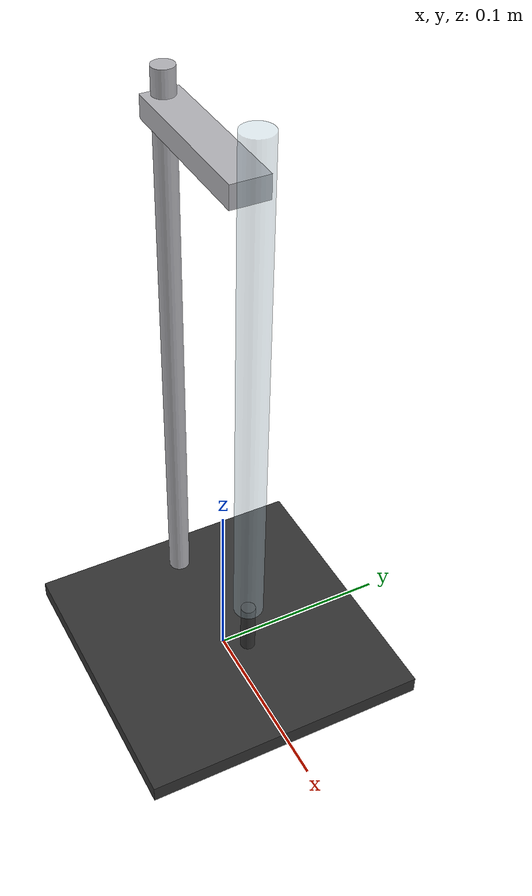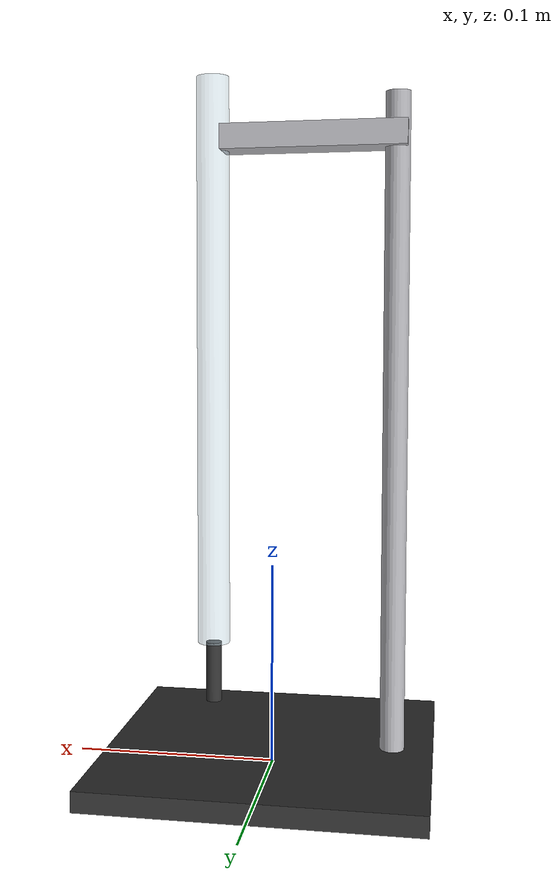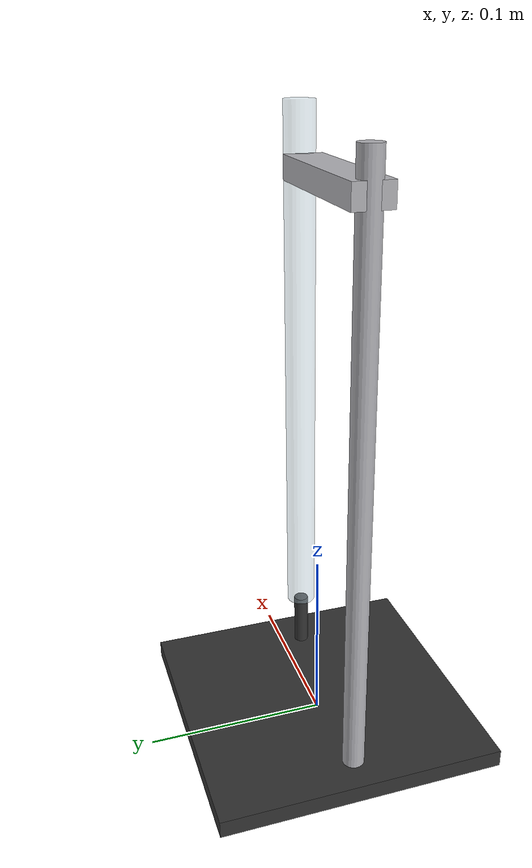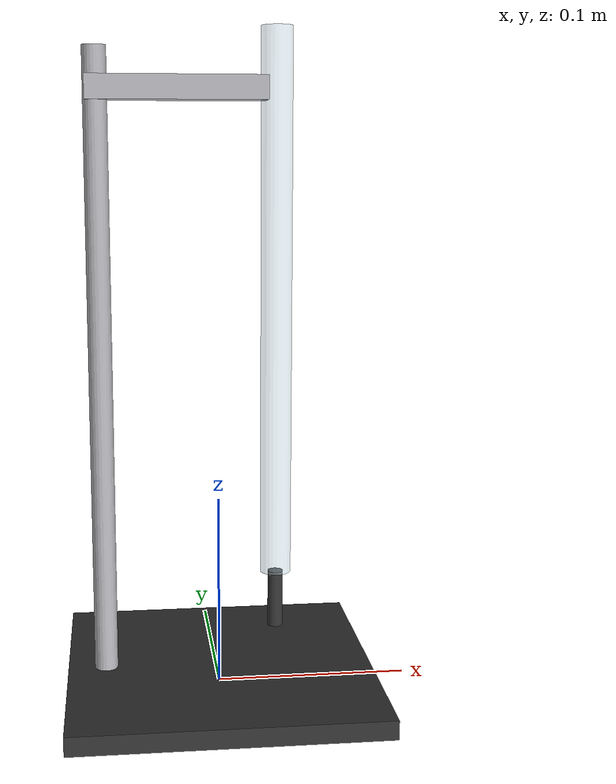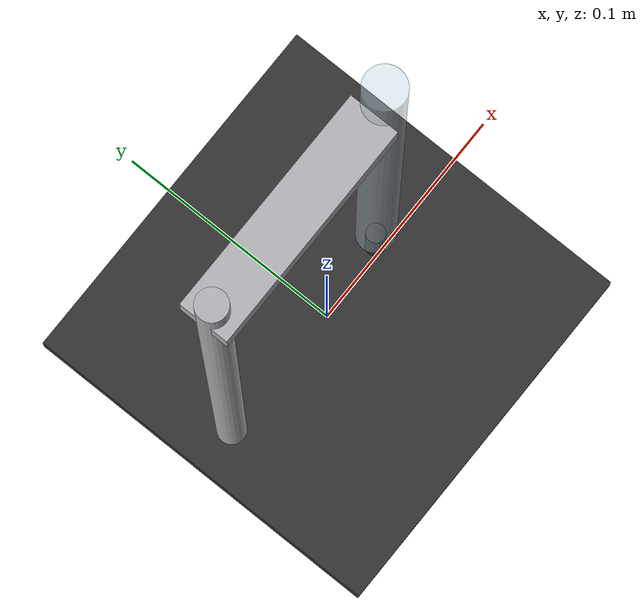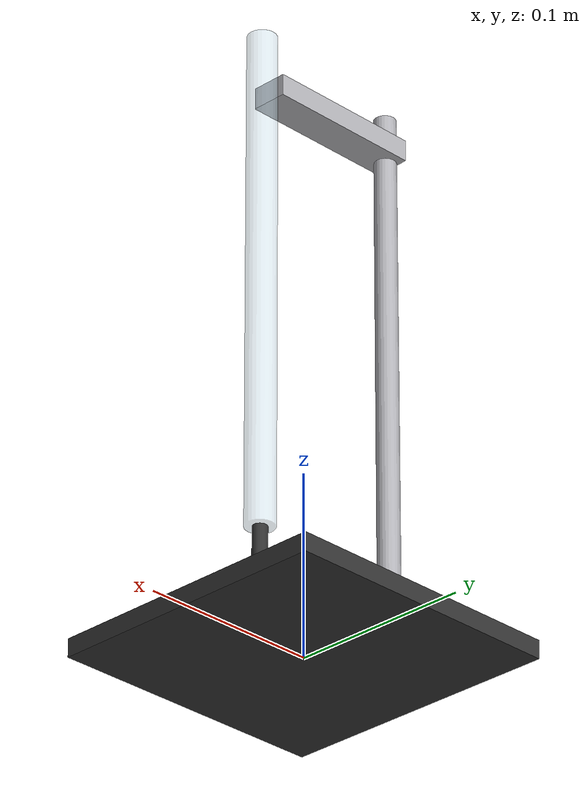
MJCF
<?xml version="1.0" encoding="utf-8"?>
<mujoco model="burette_stand">
  <compiler angle="radian" autolimits="true"/>
  <default>
    <default class="body"><geom contype="1" conaffinity="1"/></default>
  </default>
  <worldbody>
    <body name="base">
      <geom type="box" size="0.08 0.08 0.005" pos="0 0 0.005" rgba="0.2 0.2 0.2 1" class="body"/>
      <geom type="cylinder" size="0.006 0.16" pos="-0.06 0 0.17" rgba="0.7 0.7 0.72 1" class="body"/>
      <geom type="box" size="0.045 0.01 0.006" pos="-0.02 0 0.31" rgba="0.7 0.7 0.72 1" class="body"/>
      <geom type="cylinder" size="0.008 0.14" pos="0.03 0 0.20" rgba="0.75 0.85 0.9 0.4" class="body"/>
      <body name="stopcock" pos="0.03 0 0.045">
        <joint name="stopcock_joint" type="hinge" axis="1 0 0" range="-1.57 1.57" damping="0.2" frictionloss="0.1"/>
  <geom type="cylinder" size="0.004 0.015" pos="0 0 0" rgba="0.2 0.2 0.2 1" class="body"/>
      </body>
    </body>
  </worldbody>
</mujoco>
